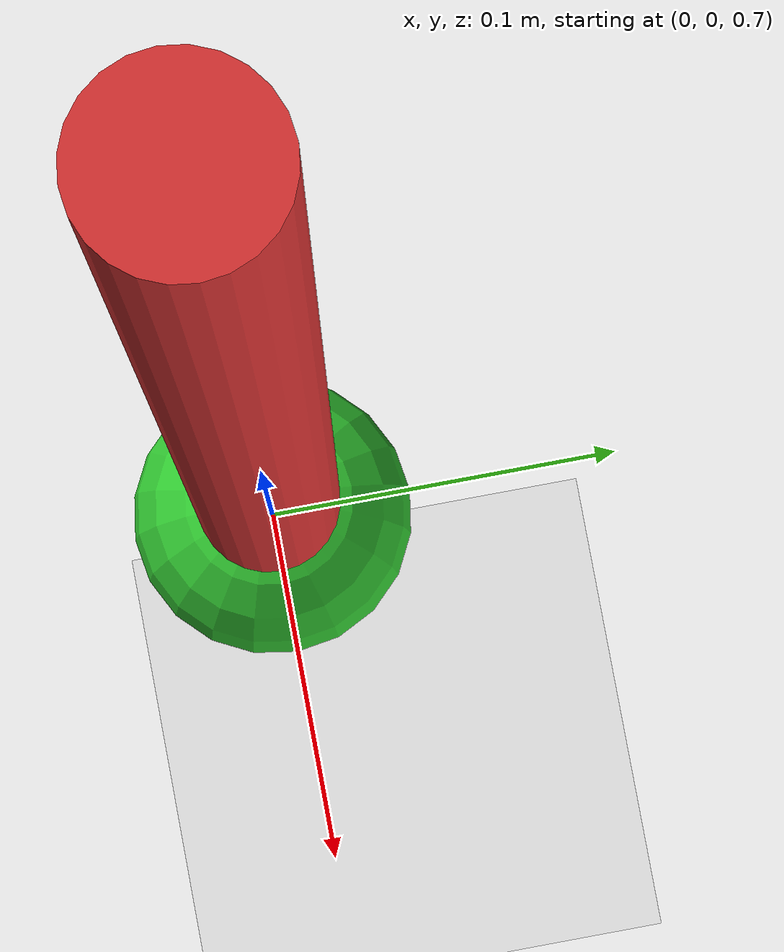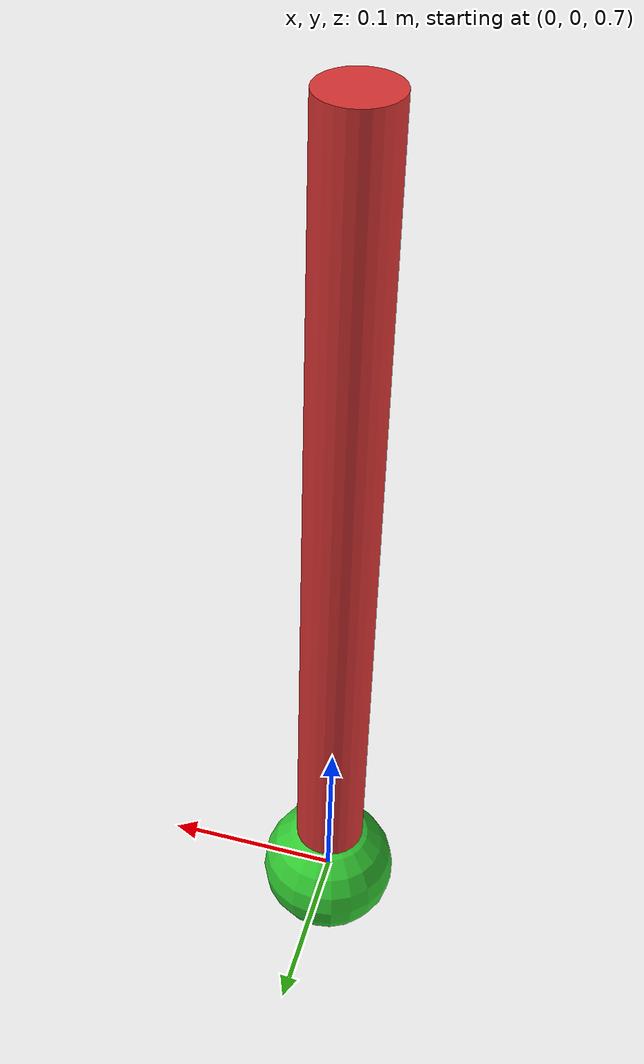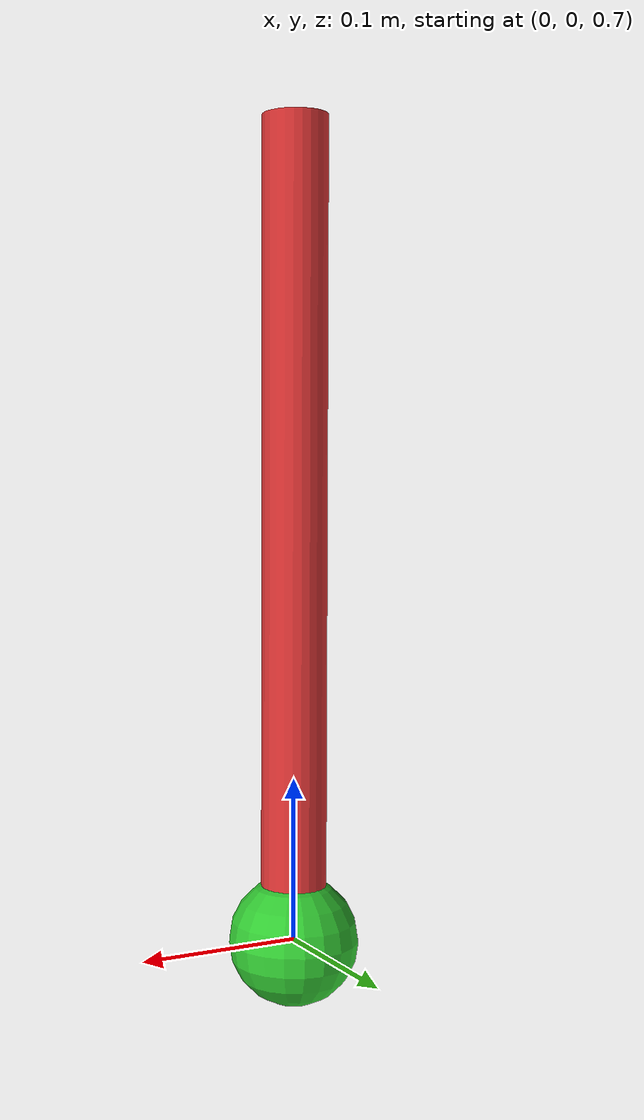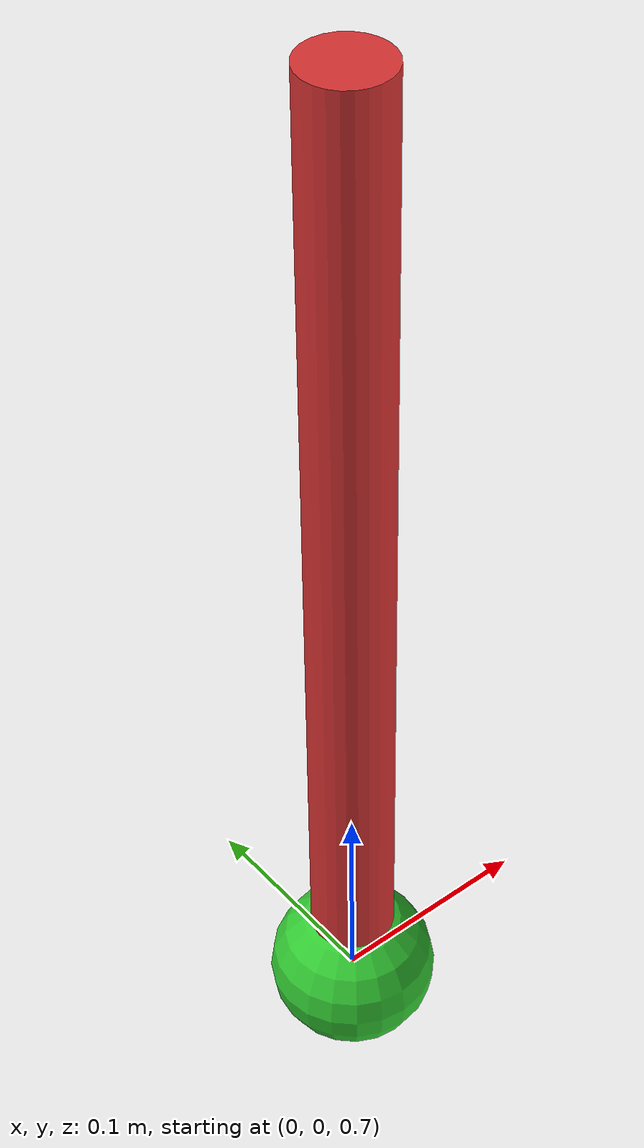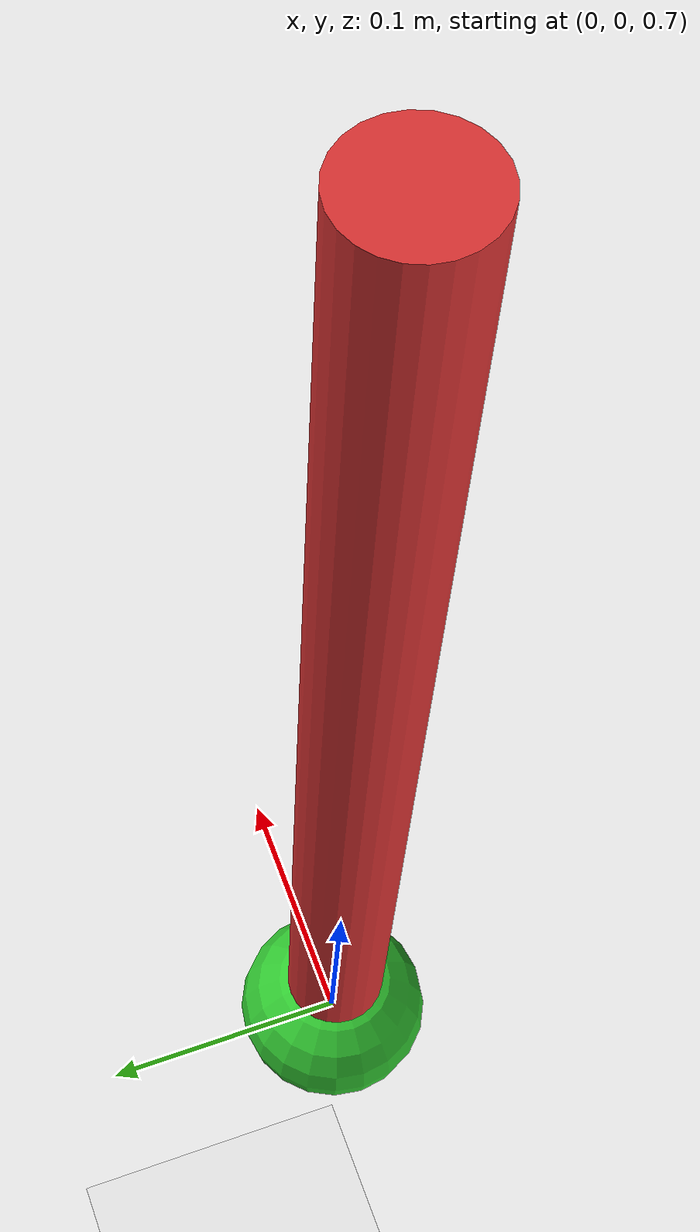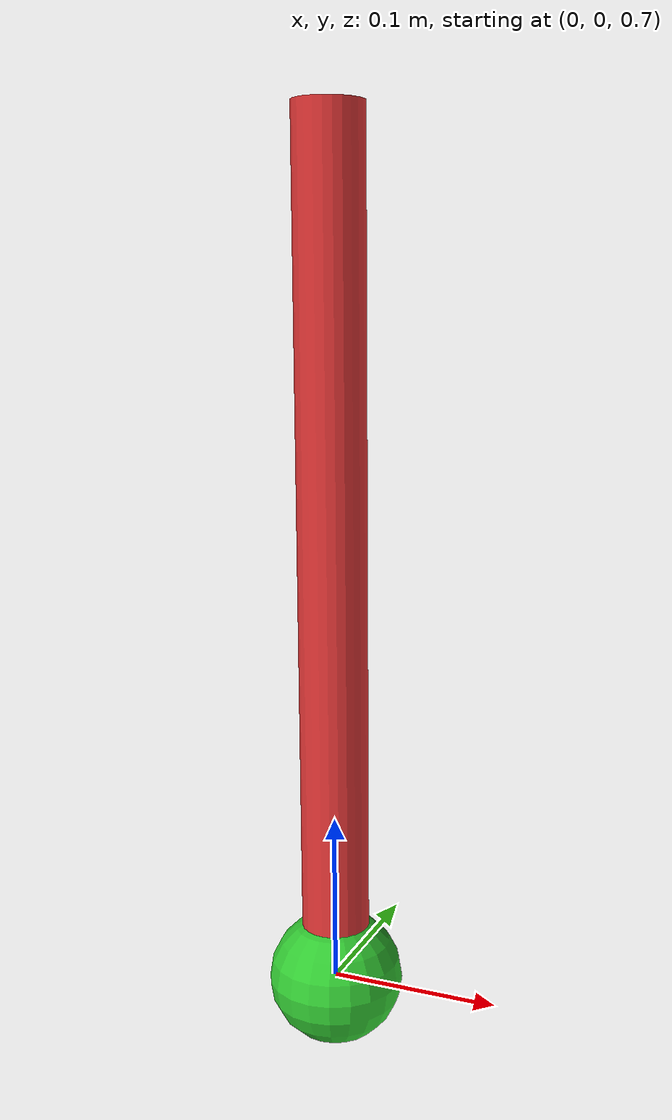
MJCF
<mujoco model="simple_pendulum">
  <!-- Visual floor and lighting -->
  <worldbody>
    <light diffuse=".8 .8 .8" pos="0 0 3" dir="0 0 -1"/>
    <geom type="plane" size="1 1 0.01" rgba="0.9 0.9 0.9 1"/>

    <!-- A fixed base stand -->
    <body pos="0 0 1.2">
      <!--
        A hinge joint:
        - axis="0 1 0" means it swings around the Y axis (forward/backward)
        - damping="0.0" means frictionless for now
      -->
      <joint name="pin" type="hinge" axis="0 1 0" damping="0.0"/>

      <!-- The rod attached to the hinge:
           length = 0.5m (from pos 0 to -0.5), mass = 1 kg -->
      <geom type="cylinder" size="0.02 0.25" pos="0 0 -0.25" rgba="0.85 0.2 0.2 1" mass="1.0"/>
      <!-- A small green ball at the tip so it is easy to track -->
      <geom type="sphere" size="0.04" pos="0 0 -0.5" rgba="0.2 0.8 0.2 1"/>
    </body>
  </worldbody>
  <actuator>
    <motor name="shoulder_motor" joint="pin"/>
  </actuator>
</mujoco>
